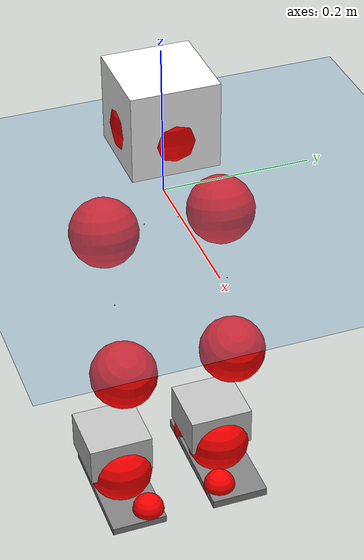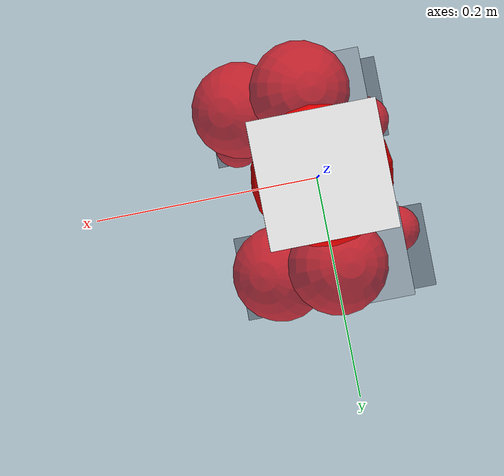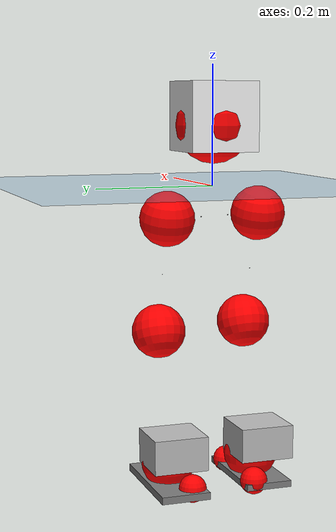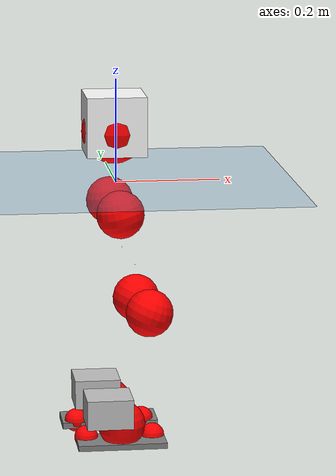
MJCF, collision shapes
<mujoco model="pi_12dof_release_v1">
  <compiler angle="radian" assetdir="assets" balanceinertia="true" inertiafromgeom="false"/>

  <option timestep="0.005" density="1.2" viscosity="2e-05"/>

  <size nkey="1"/>

  <visual>
    <quality shadowsize="8192"/>
    <map shadowclip="0.5"/>
  </visual>

  <default>
    <default class="/">
      <joint armature="0.01" damping="0.01" frictionloss="0.01"/>
      <geom contype="0" conaffinity="0" group="1" solref="-1000 -80"/>
      <site size="0.01 0.005 0.005" group="5"/>
      <general forcelimited="true" biastype="affine" gainprm="20" biasprm="0 -20 -0.5"/>
      <default class="foot">
        <geom size="0.0845 0.036 0.005" type="box" condim="6" group="4" priority="1" friction="0.9 0.2 0.2" solimp="0.015 1 0.005"/>
      </default>
      <default class="reward_collision_sphere">
        <geom group="5" rgba="1 0 0 1"/>
      </default>
    </default>
  </default>

  <asset>
    <texture type="skybox" colorspace="auto" name="//unnamed_texture_0" builtin="gradient" rgb1="0.95 0.95 0.95" rgb2="0.95 0.95 0.95" width="100" height="600"/>
    <texture type="2d" colorspace="auto" name="texplane" builtin="checker" rgb1="0.345 0.575 0.748" rgb2="0.345 0.575 0.748" markrgb="1 1 1" width="512" height="512"/>
    <material name="MatPlane" class="/" texture="texplane" texuniform="true" texrepeat="2 2" specular="0.9"/>
    <mesh name="baselink_1" class="/" file="baselink_1.STL"/>
    <mesh name="r_hip_pitch_link" class="/" file="r_hip_pitch_link.STL"/>
    <mesh name="r_hip_roll_link" class="/" file="r_hip_roll_link.STL"/>
    <mesh name="r_thigh_link" class="/" file="r_thigh_link.STL"/>
    <mesh name="r_calf_link" class="/" file="r_calf_link.STL"/>
    <mesh name="r_ankle_pitch_link" class="/" file="r_ankle_pitch_link.STL"/>
    <mesh name="r_ankle_roll_link" class="/" file="r_ankle_roll_link.STL"/>
    <mesh name="l_hip_pitch_link" class="/" file="l_hip_pitch_link.STL"/>
    <mesh name="l_hip_roll_link" class="/" file="l_hip_roll_link.STL"/>
    <mesh name="l_thigh_link" class="/" file="l_thigh_link.STL"/>
    <mesh name="l_calf_link" class="/" file="l_calf_link.STL"/>
    <mesh name="l_ankle_pitch_link" class="/" file="l_ankle_pitch_link.STL"/>
    <mesh name="l_ankle_roll_link" class="/" file="l_ankle_roll_link.STL"/>
  </asset>

  <worldbody>
    <geom name="floor" class="/" size="100 100 0.125" type="plane" group="0" material="MatPlane"/>
    <light name="toplight_shadow" class="/" pos="0 0 5" dir="0.0990148 0.0990148 -0.990148" type="directional" ambient="0.04 0.04 0.04" diffuse="0.55 0.55 0.55" specular="0.12 0.12 0.12"/>
    <light name="toplight_fill" class="/" pos="0 0 5" dir="0.0990148 0.0990148 -0.990148" type="directional" castshadow="false" ambient="0.04 0.04 0.04" diffuse="0.3 0.3 0.3" specular="0.08 0.08 0.08"/>
    <body name="trunk" pos="-0.00381128 -0.000564335 -0.00193948" quat="0.999999 -0.000436645 0.000770905 -0.000911447">
      <inertial pos="0.0054922 0.00177514 0.0573639" quat="0.687332 0.00743731 0.00947231 0.726243" mass="3.50542" diaginertia="0.00796908 0.0100202 0.0296887"/>
      <joint name="//unnamed_joint_0" type="free"/>
      <geom name="//unnamed_geom_1" class="/" type="mesh" density="0" rgba="1 1 1 1" mesh="baselink_1"/>
      <geom name="//unnamed_geom_2" class="/" size="0.057248 0.057248 0.057248" pos="0 0 0.117139" type="box" rgba="1 1 1 1"/>
      <geom name="//unnamed_geom_3" class="reward_collision_sphere" size="0.0629728" pos="0 0 0.102497"/>
      <site name="imu" class="/" pos="-0.00413611 0.00724106 -0.0108178" size="0.0114496"/>
      <camera name="track" class="/" pos="0 -2.03189 0" quat="0.707107 0.707107 0 0" mode="trackcom"/>
      <camera name="ego_camera" class="/" pos="0.0716024 0 0.263563" quat="-0.5 -0.5 0.5 0.5"/>
      <body name="r_hip_pitch_link" pos="0.00165278 -0.0253981 -0.0462039" quat="0.992075 0.000170429 -0.125648 0.000189072">
        <inertial pos="0.00364776 -0.05624 -0.00115739" quat="-0.0195103 0.707461 -0.0337296 0.705677" mass="0.55876" diaginertia="8.44501e-05 0.000111683 0.000559285"/>
        <joint name="r_hip_pitch_joint" class="/" pos="0 0 0" axis="0.00451108 -0.999957 -0.00809854" range="-1.78478 1.28505" armature="0.00996106" damping="0.00535508" frictionloss="0.0113409"/>
        <geom name="//unnamed_geom_4" class="/" type="mesh" density="0" rgba="0.75294 0.75294 0.75294 1" mesh="r_hip_pitch_link"/>
        <geom name="//unnamed_geom_5" class="/" size="0.00057248 0.00057248 0.00057248" type="box" rgba="0.75294 0.75294 0.75294 1"/>
        <body name="r_hip_roll_link" pos="0.00199085 -0.0549981 0.000882377" quat="1 0.000128285 -0.000238542 -0.000613713">
          <inertial pos="-0.00150221 -0.00041681 -0.0867086" quat="0.70571 -0.0791879 -0.0813149 0.69935" mass="0.581552" diaginertia="0.000271403 0.000303822 0.000820261"/>
          <joint name="r_hip_roll_joint" class="/" pos="0 0 0" axis="-0.999999 -0.000542856 0.00112907" stiffness="0.00223026" range="-0.170508 0.496936" armature="0.0101513" damping="0.0216018" frictionloss="0.0107775"/>
          <geom name="//unnamed_geom_6" class="/" type="mesh" density="0" rgba="0.75294 0.75294 0.75294 1" mesh="r_hip_roll_link"/>
          <geom name="//unnamed_geom_7" class="/" size="0.00057248 0.00057248 0.00057248" type="box" rgba="0.75294 0.75294 0.75294 1"/>
          <geom name="//unnamed_geom_8" class="reward_collision_sphere" size="0.0457984"/>
          <body name="r_thigh_link" pos="0.00276989 0.00251913 -0.101709" quat="1 -0.000310912 -1.45592e-05 0.000288003">
            <inertial pos="0.0010794 0.00223149 -0.0691527" quat="0.734937 0.678039 0.0112445 -0.00207539" mass="0.16831" diaginertia="9.26848e-05 9.80139e-05 0.000381904"/>
            <joint name="r_thigh_joint" class="/" pos="0 0 0" axis="-0.0016427 -0.00130897 -0.999998" range="-0.28701 0.61516" armature="0.0108227" damping="0.0162948" frictionloss="0.0136735"/>
            <geom name="//unnamed_geom_9" class="/" type="mesh" density="0" rgba="0.75294 0.75294 0.75294 1" mesh="r_thigh_link"/>
            <geom name="//unnamed_geom_10" class="/" size="0.00057248 0.00057248 0.00057248" type="box" rgba="0.75294 0.75294 0.75294 1"/>
            <body name="r_calf_link" pos="0.00299283 0.000166684 -0.100371" quat="0.947721 4.41274e-05 0.319099 -0.000200912">
              <inertial pos="0.00120272 0.000662931 -0.100877" quat="0.999964 -0.00142142 -0.00542199 0.00638137" mass="1.23241" diaginertia="0.00275657 0.00371668 0.00114577"/>
              <joint name="r_calf_joint" class="/" pos="0 0 0" axis="-0.00299709 -0.999982 0.00522949" stiffness="0.00858504" range="-1.71735 0.6215" armature="0.0102371" damping="0.0207537" frictionloss="0.0112279"/>
              <geom name="//unnamed_geom_11" class="/" type="mesh" density="0" rgba="0.75294 0.75294 0.75294 1" mesh="r_calf_link"/>
              <geom name="//unnamed_geom_12" class="/" size="0.00057248 0.00057248 0.00057248" type="box" rgba="0.75294 0.75294 0.75294 1"/>
              <geom name="//unnamed_geom_13" class="reward_collision_sphere" size="0.0457984"/>
              <body name="r_ankle_pitch_link" pos="0.000193578 0.00346322 -0.205276" quat="0.980053 3.66791e-05 -0.198737 -3.33979e-05">
                <inertial pos="0.00586845 0.00399226 -0.00136078" quat="0.00472397 0.70822 -0.00293831 0.70597" mass="0.260683" diaginertia="0.000235355 0.000226843 0.000775967"/>
                <joint name="r_ankle_pitch_joint" class="/" pos="0 0 0" axis="-0.00586713 -0.999906 0.0123545" range="-1.25646 0.506053" armature="0.0117145" damping="0.00488159" frictionloss="0.0121834"/>
                <geom name="//unnamed_geom_14" class="/" type="mesh" density="0" rgba="0.75294 0.75294 0.75294 1" mesh="r_ankle_pitch_link"/>
                <geom name="//unnamed_geom_15" class="/" size="0.0446534 0.0457984 0.028624" type="box" rgba="0.75294 0.75294 0.75294 1"/>
                <body name="r_ankle_roll_link" pos="0.0734638 0.00339662 -0.00252501" quat="1 -0.00030662 -0.00032968 -0.00017868">
                  <inertial pos="-0.0214922 0.00070968 -0.0219193" quat="0.555619 0.426286 0.441933 0.560591" mass="0.782506" diaginertia="0.000896877 0.00111852 0.00191534"/>
                  <joint name="r_ankle_roll_joint" class="/" pos="0 0 0" axis="-0.999872 -0.0153614 -0.00444405" stiffness="0.00118669" range="-0.102129 0.161834" armature="0.010126" damping="0" frictionloss="0.0119534"/>
                  <geom name="//unnamed_geom_16" class="/" type="mesh" density="0" rgba="0.75294 0.75294 0.75294 1" mesh="r_ankle_roll_link"/>
                  <geom name="//unnamed_geom_17" class="/" type="mesh" rgba="0.75294 0.75294 0.75294 1" mesh="r_ankle_roll_link"/>
                  <geom name="right_foot" class="foot" size="0.0856424 0.0395625 0.00536704" pos="-0.0486896 0 -0.0644265"/>
                  <geom name="//unnamed_geom_19" class="reward_collision_sphere" size="0.0457984" pos="-0.0477349 0 -0.0292848"/>
                  <geom name="//unnamed_geom_20" class="reward_collision_sphere" size="0.0228992" pos="0.0143205 0.0203189 -0.0585695"/>
                  <geom name="//unnamed_geom_21" class="reward_collision_sphere" size="0.0228992" pos="-0.114564 0.0203189 -0.0585695"/>
                  <site name="right_foot" class="foot" pos="-0.0486896 0 -0.0644265" size="0.0114496"/>
                </body>
              </body>
            </body>
          </body>
        </body>
      </body>
      <body name="l_hip_pitch_link" pos="-0.00118931 0.0221849 -0.0476899" quat="0.992169 -0.000129239 -0.124899 -2.88824e-05">
        <inertial pos="0.00324993 0.052173 -0.000172763" quat="-0.0380676 0.692527 0.0204665 0.720096" mass="0.581995" diaginertia="0.000106185 0.000118105 0.000679099"/>
        <joint name="l_hip_pitch_joint" class="/" pos="0 0 0" axis="-0.0177682 0.999842 -8.0006e-05" range="-1.19484 1.74906" armature="0.0118165" damping="0.0216455" frictionloss="0.0113453"/>
        <geom name="//unnamed_geom_22" class="/" type="mesh" density="0" rgba="0.75294 0.75294 0.75294 1" mesh="l_hip_pitch_link"/>
        <geom name="//unnamed_geom_23" class="/" size="0.00057248 0.00057248 0.00057248" type="box" rgba="0.75294 0.75294 0.75294 1"/>
        <body name="l_hip_roll_link" pos="0.000114859 0.0591672 -0.00171287" quat="1 -0.000615533 0.000437277 8.00662e-06">
          <inertial pos="-0.00172168 -0.000543508 -0.0869745" quat="0.690872 -0.0713138 -0.0787229 0.715131" mass="0.579345" diaginertia="0.000272722 0.00031857 0.000900021"/>
          <joint name="l_hip_roll_joint" class="/" pos="0 0 0" axis="-0.999895 -0.00922905 -0.0112025" stiffness="0.0230165" range="-0.533876 0.10238" armature="0.0101339" damping="0.00843029" frictionloss="0.00999402"/>
          <geom name="//unnamed_geom_24" class="/" type="mesh" density="0" rgba="0.75294 0.75294 0.75294 1" mesh="l_hip_roll_link"/>
          <geom name="//unnamed_geom_25" class="/" size="0.00057248 0.00057248 0.00057248" type="box" rgba="0.75294 0.75294 0.75294 1"/>
          <geom name="//unnamed_geom_26" class="reward_collision_sphere" size="0.0457984"/>
          <body name="l_thigh_link" pos="-0.000193896 0.00100795 -0.0984091" quat="0.999999 -0.000600488 -0.000488934 -0.00093169">
            <inertial pos="-0.00221122 -0.00471784 -0.0695716" quat="0.670985 0.741453 -0.00511546 -0.000736522" mass="0.1747" diaginertia="0.000100466 0.000106085 0.000420328"/>
            <joint name="l_thigh_joint" class="/" pos="0 0 0" axis="-0.0106866 -0.00804211 -0.999911" stiffness="0.00262857" range="-0.602084 0.302009" armature="0.0123168" damping="0.0131539" frictionloss="0.0123671"/>
            <geom name="//unnamed_geom_27" class="/" type="mesh" density="0" rgba="0.75294 0.75294 0.75294 1" mesh="l_thigh_link"/>
            <geom name="//unnamed_geom_28" class="/" size="0.00057248 0.00057248 0.00057248" type="box" rgba="0.75294 0.75294 0.75294 1"/>
            <body name="l_calf_link" pos="0.00156511 -0.00165175 -0.105283" quat="0.948063 1.25965e-05 0.318081 -0.000698155">
              <inertial pos="-0.0029104 0.00342583 -0.0988737" quat="0.999986 0.00345978 0.000564969 0.00403152" mass="1.22419" diaginertia="0.0028131 0.00379461 0.00115821"/>
              <joint name="l_calf_joint" class="/" pos="0 0 0" axis="0.00599821 0.99998 -0.00184172" range="-0.685228 1.62903" armature="0.01286" damping="0.00752688" frictionloss="0.0122377"/>
              <geom name="//unnamed_geom_29" class="/" type="mesh" density="0" rgba="0.75294 0.75294 0.75294 1" mesh="l_calf_link"/>
              <geom name="//unnamed_geom_30" class="/" size="0.00057248 0.00057248 0.00057248" type="box" rgba="0.75294 0.75294 0.75294 1"/>
              <geom name="//unnamed_geom_31" class="reward_collision_sphere" size="0.0457984"/>
              <body name="l_ankle_pitch_link" pos="-0.00210128 0.00086284 -0.201484" quat="0.980066 -1.81392e-06 -0.198671 -6.82639e-06">
                <inertial pos="0.00272457 -0.00154871 -0.000489611" quat="-0.00304927 0.704202 0.000595479 0.709993" mass="0.268703" diaginertia="0.000237404 0.000241685 0.000801139"/>
                <joint name="l_ankle_pitch_joint" class="/" pos="0 0 0" axis="-0.00221121 0.999995 -0.00246093" range="-0.508935 1.32959" armature="0.0112003" damping="0" frictionloss="0.0126663"/>
                <geom name="//unnamed_geom_32" class="/" type="mesh" density="0" rgba="0.75294 0.75294 0.75294 1" mesh="l_ankle_pitch_link"/>
                <geom name="//unnamed_geom_33" class="/" size="0.0446534 0.0457984 0.028624" type="box" rgba="0.75294 0.75294 0.75294 1"/>
                <body name="l_ankle_roll_link" pos="0.0735198 0.000757586 0.00151253" quat="1 0.000283868 -0.000399408 -0.000113259">
                  <inertial pos="-0.022866 0.00049347 -0.0206211" quat="0.564228 0.433351 0.429887 0.555924" mass="0.77439" diaginertia="0.000926946 0.00111024 0.00188642"/>
                  <joint name="l_ankle_roll_joint" class="/" pos="0 0 0" axis="-0.999888 0.00712824 -0.0131562" stiffness="0.00861592" range="-0.148843 0.194872" armature="0.00993247" damping="0.00639677" frictionloss="0.0101139"/>
                  <geom name="//unnamed_geom_34" class="/" type="mesh" density="0" rgba="0.75294 0.75294 0.75294 1" mesh="l_ankle_roll_link"/>
                  <geom name="//unnamed_geom_35" class="/" type="mesh" rgba="0.75294 0.75294 0.75294 1" mesh="l_ankle_roll_link"/>
                  <geom name="left_foot" class="foot" size="0.094201 0.0409919 0.00600491" pos="-0.0486896 0 -0.0644265"/>
                  <geom name="//unnamed_geom_37" class="reward_collision_sphere" size="0.0457984" pos="-0.0477349 0 -0.0292848"/>
                  <geom name="//unnamed_geom_38" class="reward_collision_sphere" size="0.0228992" pos="0.0143205 -0.0203189 -0.0585695"/>
                  <geom name="//unnamed_geom_39" class="reward_collision_sphere" size="0.0228992" pos="-0.114564 -0.0203189 -0.0585695"/>
                  <site name="left_foot" class="foot" pos="-0.0486896 0 -0.0644265" size="0.0114496"/>
                </body>
              </body>
            </body>
          </body>
        </body>
      </body>
    </body>
  </worldbody>

  <contact>
    <pair class="/" geom1="floor" geom2="right_foot" name="//unnamed_contact_1"/>
    <pair class="/" geom1="floor" geom2="left_foot" name="//unnamed_contact_0"/>
  </contact>

  <actuator>
    <general name="r_hip_pitch_joint" class="/" joint="r_hip_pitch_joint" forcerange="-24.818 24.818" gainprm="22.7824" biasprm="0 -22.7824 -0.608035"/>
    <general name="r_hip_roll_joint" class="/" joint="r_hip_roll_joint" forcerange="-24.9839 24.9839" gainprm="22.7824" biasprm="0 -22.7824 -0.608035"/>
    <general name="r_thigh_joint" class="/" joint="r_thigh_joint" forcerange="-22.3356 22.3356" gainprm="22.7824" biasprm="0 -22.7824 -0.608035"/>
    <general name="r_calf_joint" class="/" joint="r_calf_joint" forcerange="-20.8373 20.8373" gainprm="22.7824" biasprm="0 -22.7824 -0.608035"/>
    <general name="r_ankle_pitch_joint" class="/" joint="r_ankle_pitch_joint" forcerange="-26.1037 26.1037" gainprm="22.7824" biasprm="0 -22.7824 -0.608035"/>
    <general name="r_ankle_roll_joint" class="/" joint="r_ankle_roll_joint" forcerange="-26.0085 26.0085" gainprm="22.7824" biasprm="0 -22.7824 -0.608035"/>
    <general name="l_hip_pitch_joint" class="/" joint="l_hip_pitch_joint" forcerange="-23.6041 23.6041" gainprm="22.7824" biasprm="0 -22.7824 -0.608035"/>
    <general name="l_hip_roll_joint" class="/" joint="l_hip_roll_joint" forcerange="-22.6854 22.6854" gainprm="22.7824" biasprm="0 -22.7824 -0.608035"/>
    <general name="l_thigh_joint" class="/" joint="l_thigh_joint" forcerange="-22.6117 22.6117" gainprm="22.7824" biasprm="0 -22.7824 -0.608035"/>
    <general name="l_calf_joint" class="/" joint="l_calf_joint" forcerange="-24.262 24.262" gainprm="22.7824" biasprm="0 -22.7824 -0.608035"/>
    <general name="l_ankle_pitch_joint" class="/" joint="l_ankle_pitch_joint" forcerange="-25.4759 25.4759" gainprm="22.7824" biasprm="0 -22.7824 -0.608035"/>
    <general name="l_ankle_roll_joint" class="/" joint="l_ankle_roll_joint" forcerange="-24.9437 24.9437" gainprm="22.7824" biasprm="0 -22.7824 -0.608035"/>
  </actuator>

  <sensor>
    <gyro site="imu" name="imu_angular_velocity"/>
    <velocimeter site="imu" name="imu_linear_velocity"/>
    <framelinvel objtype="site" objname="left_foot" name="left_foot_global_linear_velocity"/>
    <framelinvel objtype="site" objname="right_foot" name="right_foot_global_linear_velocity"/>
  </sensor>

  <keyframe>
    <key name="home" qpos="0 0 0.291 1 0 0 0 0.4 0 0 -0.8 0.4 0 -0.4 0 0 0.8 -0.4 0"/>
  </keyframe>
</mujoco>
